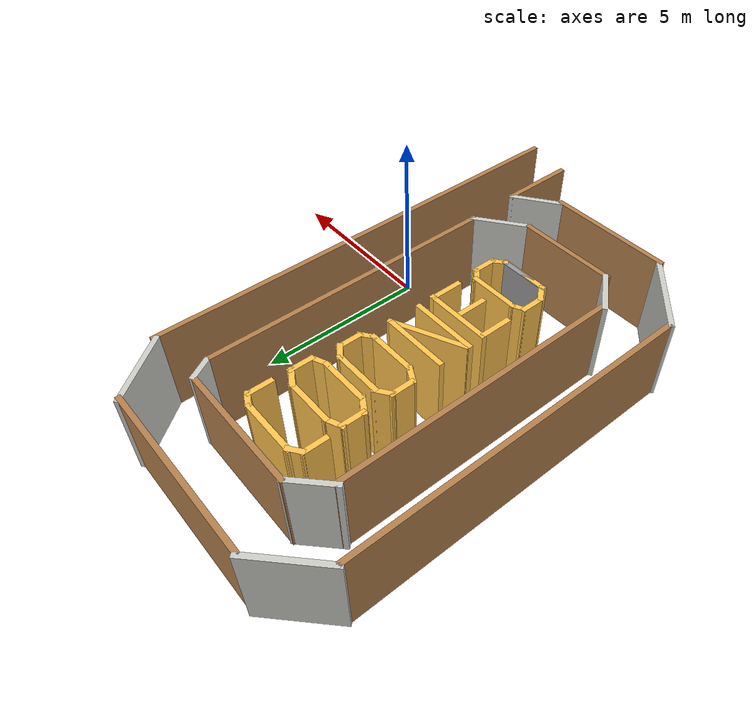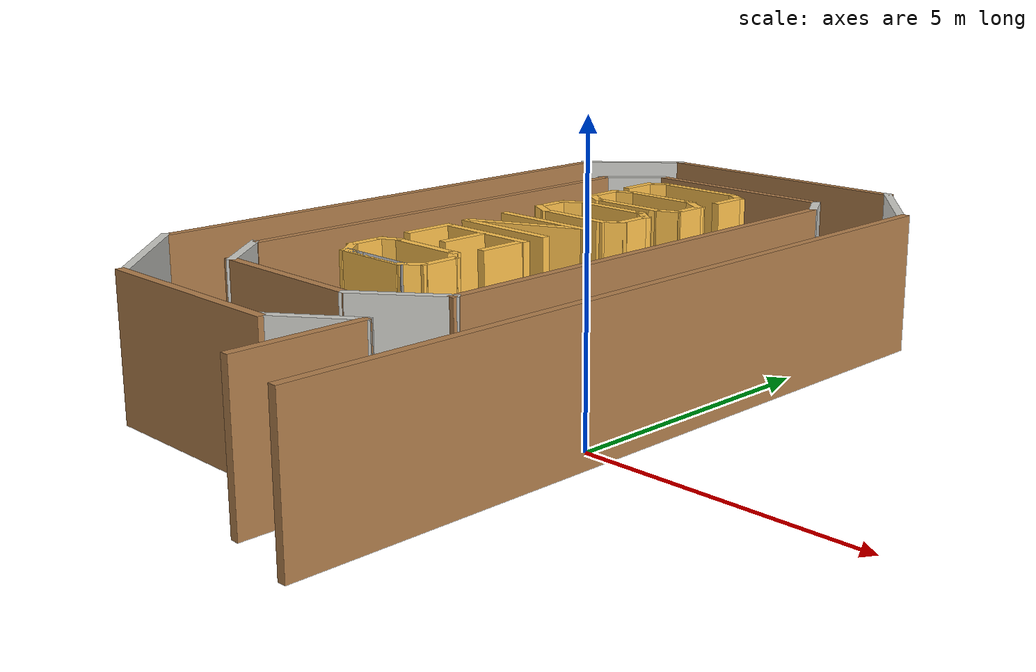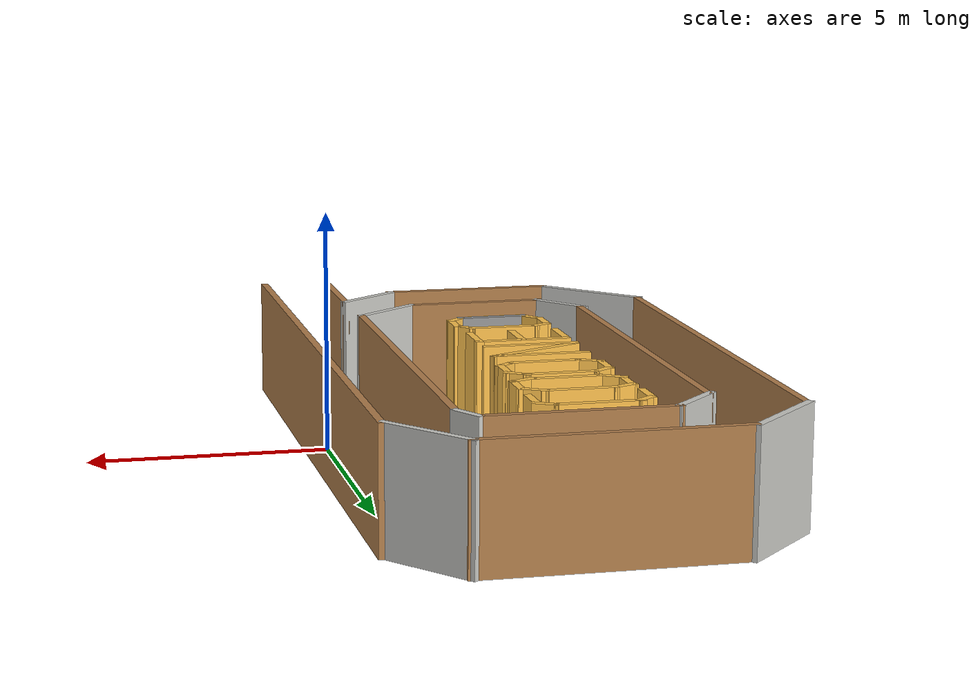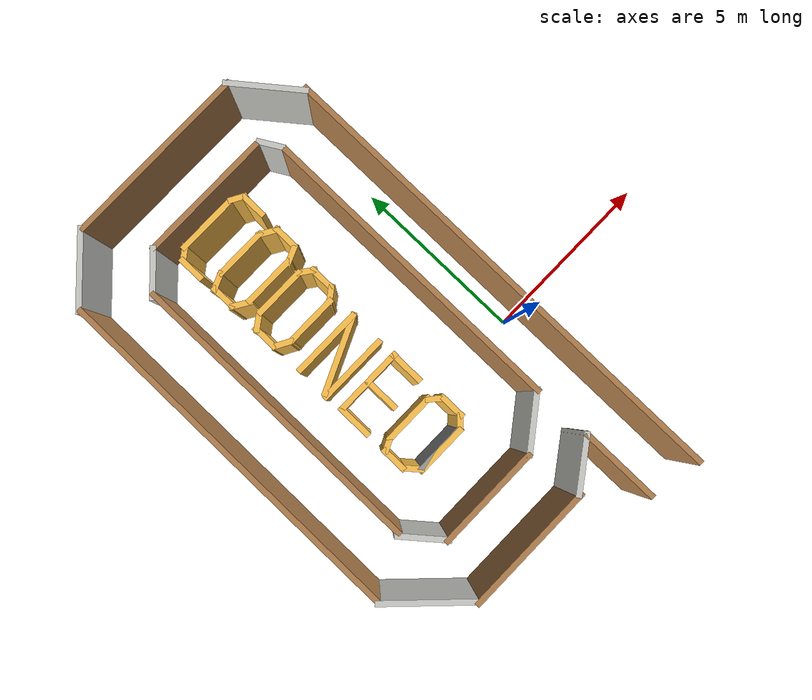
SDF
<?xml version='1.0'?>
<sdf version='1.6'>
  <model name='cooneo_race_road'>
    <pose frame=''>-3.53887 1.83486 0 0 -0 0</pose>
    <link name='Wall_11'>
      <collision name='Wall_11_Collision'>
        <geometry>
          <box>
            <size>1.37699 0.15 2.5</size>
          </box>
        </geometry>
        <pose frame=''>0 0 1.25 0 -0 0</pose>
      </collision>
      <visual name='Wall_11_Visual'>
        <pose frame=''>0 0 1.25 0 -0 0</pose>
        <geometry>
          <box>
            <size>1.37699 0.15 2.5</size>
          </box>
        </geometry>
        <material>
          <script>
            <uri>file://media/materials/scripts/gazebo.material</uri>
            <name>Gazebo/CeilingTiled</name>
          </script>
          <ambient>1 1 1 1</ambient>
        </material>
        <meta>
          <layer>0</layer>
        </meta>
      </visual>
      <pose frame=''>-1.99371 5.36024 0 0 -0 0.767422</pose>
    </link>
    <link name='Wall_112'>
      <collision name='Wall_112_Collision'>
        <geometry>
          <box>
            <size>0.75 0.15 2.5</size>
          </box>
        </geometry>
        <pose frame=''>0 0 1.25 0 -0 0</pose>
      </collision>
      <visual name='Wall_112_Visual'>
        <pose frame=''>0 0 1.25 0 -0 0</pose>
        <geometry>
          <box>
            <size>0.75 0.15 2.5</size>
          </box>
        </geometry>
        <material>
          <script>
            <uri>file://media/materials/scripts/gazebo.material</uri>
            <name>Gazebo/Grey</name>
          </script>
          <ambient>1 0.764706 0.305882 1</ambient>
        </material>
        <meta>
          <layer>0</layer>
        </meta>
      </visual>
      <pose frame=''>0.922545 4.75692 0 0 -0 1.5708</pose>
    </link>
    <link name='Wall_113'>
      <collision name='Wall_113_Collision'>
        <geometry>
          <box>
            <size>0.503409 0.15 2.5</size>
          </box>
        </geometry>
        <pose frame=''>0 0 1.25 0 -0 0</pose>
      </collision>
      <visual name='Wall_113_Visual'>
        <pose frame=''>0 0 1.25 0 -0 0</pose>
        <geometry>
          <box>
            <size>0.503409 0.15 2.5</size>
          </box>
        </geometry>
        <material>
          <script>
            <uri>file://media/materials/scripts/gazebo.material</uri>
            <name>Gazebo/Grey</name>
          </script>
          <ambient>1 0.764706 0.305882 1</ambient>
        </material>
        <meta>
          <layer>0</layer>
        </meta>
      </visual>
      <pose frame=''>0.78816 5.16279 0 0 -0 2.63485</pose>
    </link>
    <link name='Wall_114'>
      <collision name='Wall_114_Collision'>
        <geometry>
          <box>
            <size>1.75 0.15 2.5</size>
          </box>
        </geometry>
        <pose frame=''>0 0 1.25 0 -0 0</pose>
      </collision>
      <visual name='Wall_114_Visual'>
        <pose frame=''>0 0 1.25 0 -0 0</pose>
        <geometry>
          <box>
            <size>1.75 0.15 2.5</size>
          </box>
        </geometry>
        <material>
          <script>
            <uri>file://media/materials/scripts/gazebo.material</uri>
            <name>Gazebo/Grey</name>
          </script>
          <ambient>1 0.764706 0.305882 1</ambient>
        </material>
        <meta>
          <layer>0</layer>
        </meta>
      </visual>
      <pose frame=''>-0.206793 5.24855 0 0 -0 3.14159</pose>
    </link>
    <link name='Wall_115'>
      <collision name='Wall_115_Collision'>
        <geometry>
          <box>
            <size>0.491049 0.15 2.5</size>
          </box>
        </geometry>
        <pose frame=''>0 0 1.25 0 -0 0</pose>
      </collision>
      <visual name='Wall_115_Visual'>
        <pose frame=''>0 0 1.25 0 -0 0</pose>
        <geometry>
          <box>
            <size>0.491049 0.15 2.5</size>
          </box>
        </geometry>
        <material>
          <script>
            <uri>file://media/materials/scripts/gazebo.material</uri>
            <name>Gazebo/Grey</name>
          </script>
          <ambient>1 0.764706 0.305882 1</ambient>
        </material>
        <meta>
          <layer>0</layer>
        </meta>
      </visual>
      <pose frame=''>-1.1044 5.14846 0 0 0 -2.5143</pose>
    </link>
    <link name='Wall_118'>
      <collision name='Wall_118_Collision'>
        <geometry>
          <box>
            <size>0.75 0.15 2.5</size>
          </box>
        </geometry>
        <pose frame=''>0 0 1.25 0 -0 0</pose>
      </collision>
      <visual name='Wall_118_Visual'>
        <pose frame=''>0 0 1.25 0 -0 0</pose>
        <geometry>
          <box>
            <size>0.75 0.15 2.5</size>
          </box>
        </geometry>
        <material>
          <script>
            <uri>file://media/materials/scripts/gazebo.material</uri>
            <name>Gazebo/Grey</name>
          </script>
          <ambient>1 0.764706 0.305882 1</ambient>
        </material>
        <meta>
          <layer>0</layer>
        </meta>
      </visual>
      <pose frame=''>0.907998 3.62204 0 0 -0 1.5708</pose>
    </link>
    <link name='Wall_119'>
      <collision name='Wall_119_Collision'>
        <geometry>
          <box>
            <size>0.620203 0.15 2.5</size>
          </box>
        </geometry>
        <pose frame=''>0 0 1.25 0 -0 0</pose>
      </collision>
      <visual name='Wall_119_Visual'>
        <pose frame=''>0 0 1.25 0 -0 0</pose>
        <geometry>
          <box>
            <size>0.620203 0.15 2.5</size>
          </box>
        </geometry>
        <material>
          <script>
            <uri>file://media/materials/scripts/gazebo.material</uri>
            <name>Gazebo/Grey</name>
          </script>
          <ambient>1 0.764706 0.305882 1</ambient>
        </material>
        <meta>
          <layer>0</layer>
        </meta>
      </visual>
      <pose frame=''>0.7059 4.02205 0 0 -0 2.60532</pose>
    </link>
    <link name='Wall_12'>
      <collision name='Wall_12_Collision'>
        <geometry>
          <box>
            <size>3.75 0.15 2.5</size>
          </box>
        </geometry>
        <pose frame=''>0 0 1.25 0 -0 0</pose>
      </collision>
      <visual name='Wall_12_Visual'>
        <pose frame=''>0 0 1.25 0 -0 0</pose>
        <geometry>
          <box>
            <size>3.75 0.15 2.5</size>
          </box>
        </geometry>
        <material>
          <script>
            <uri>file://media/materials/scripts/gazebo.material</uri>
            <name>Gazebo/Wood</name>
          </script>
          <ambient>1 1 1 1</ambient>
        </material>
        <meta>
          <layer>0</layer>
        </meta>
      </visual>
      <pose frame=''>0.247827 5.78618 0 0 -0 0</pose>
    </link>
    <link name='Wall_120'>
      <collision name='Wall_120_Collision'>
        <geometry>
          <box>
            <size>1.5 0.15 2.5</size>
          </box>
        </geometry>
        <pose frame=''>0 0 1.25 0 -0 0</pose>
      </collision>
      <visual name='Wall_120_Visual'>
        <pose frame=''>0 0 1.25 0 -0 0</pose>
        <geometry>
          <box>
            <size>1.5 0.15 2.5</size>
          </box>
        </geometry>
        <material>
          <script>
            <uri>file://media/materials/scripts/gazebo.material</uri>
            <name>Gazebo/Grey</name>
          </script>
          <ambient>1 0.764706 0.305882 1</ambient>
        </material>
        <meta>
          <layer>0</layer>
        </meta>
      </visual>
      <pose frame=''>-0.151084 4.14217 0 0 -0 3.14159</pose>
    </link>
    <link name='Wall_121'>
      <collision name='Wall_121_Collision'>
        <geometry>
          <box>
            <size>0.575747 0.15 2.5</size>
          </box>
        </geometry>
        <pose frame=''>0 0 1.25 0 -0 0</pose>
      </collision>
      <visual name='Wall_121_Visual'>
        <pose frame=''>0 0 1.25 0 -0 0</pose>
        <geometry>
          <box>
            <size>0.575747 0.15 2.5</size>
          </box>
        </geometry>
        <material>
          <script>
            <uri>file://media/materials/scripts/gazebo.material</uri>
            <name>Gazebo/Grey</name>
          </script>
          <ambient>1 0.764706 0.305882 1</ambient>
        </material>
        <meta>
          <layer>0</layer>
        </meta>
      </visual>
      <pose frame=''>-1.04233 4.05942 0 0 0 -2.74235</pose>
    </link>
    <link name='Wall_122'>
      <collision name='Wall_122_Collision'>
        <geometry>
          <box>
            <size>0.75 0.15 2.5</size>
          </box>
        </geometry>
        <pose frame=''>0 0 1.25 0 -0 0</pose>
      </collision>
      <visual name='Wall_122_Visual'>
        <pose frame=''>0 0 1.25 0 -0 0</pose>
        <geometry>
          <box>
            <size>0.75 0.15 2.5</size>
          </box>
        </geometry>
        <material>
          <script>
            <uri>file://media/materials/scripts/gazebo.material</uri>
            <name>Gazebo/Grey</name>
          </script>
          <ambient>1 0.764706 0.305882 1</ambient>
        </material>
        <meta>
          <layer>0</layer>
        </meta>
      </visual>
      <pose frame=''>-1.21835 3.67668 0 0 0 -1.5708</pose>
    </link>
    <link name='Wall_124'>
      <collision name='Wall_124_Collision'>
        <geometry>
          <box>
            <size>0.609099 0.15 2.5</size>
          </box>
        </geometry>
        <pose frame=''>0 0 1.25 0 -0 0</pose>
      </collision>
      <visual name='Wall_124_Visual'>
        <pose frame=''>0 0 1.25 0 -0 0</pose>
        <geometry>
          <box>
            <size>0.609099 0.15 2.5</size>
          </box>
        </geometry>
        <material>
          <script>
            <uri>file://media/materials/scripts/gazebo.material</uri>
            <name>Gazebo/Grey</name>
          </script>
          <ambient>1 0.764706 0.305882 1</ambient>
        </material>
        <meta>
          <layer>0</layer>
        </meta>
      </visual>
      <pose frame=''>-1.04363 3.25529 0 0 0 -0.557177</pose>
    </link>
    <link name='Wall_125'>
      <collision name='Wall_125_Collision'>
        <geometry>
          <box>
            <size>1.5 0.15 2.5</size>
          </box>
        </geometry>
        <pose frame=''>0 0 1.25 0 -0 0</pose>
      </collision>
      <visual name='Wall_125_Visual'>
        <pose frame=''>0 0 1.25 0 -0 0</pose>
        <geometry>
          <box>
            <size>1.5 0.15 2.5</size>
          </box>
        </geometry>
        <material>
          <script>
            <uri>file://media/materials/scripts/gazebo.material</uri>
            <name>Gazebo/Grey</name>
          </script>
          <ambient>1 0.764706 0.305882 1</ambient>
        </material>
        <meta>
          <layer>0</layer>
        </meta>
      </visual>
      <pose frame=''>-0.153687 3.15402 0 0 -0 0</pose>
    </link>
    <link name='Wall_127'>
      <collision name='Wall_127_Collision'>
        <geometry>
          <box>
            <size>0.589194 0.15 2.5</size>
          </box>
        </geometry>
        <pose frame=''>0 0 1.25 0 -0 0</pose>
      </collision>
      <visual name='Wall_127_Visual'>
        <pose frame=''>0 0 1.25 0 -0 0</pose>
        <geometry>
          <box>
            <size>0.589194 0.15 2.5</size>
          </box>
        </geometry>
        <material>
          <script>
            <uri>file://media/materials/scripts/gazebo.material</uri>
            <name>Gazebo/Grey</name>
          </script>
          <ambient>1 0.764706 0.305882 1</ambient>
        </material>
        <meta>
          <layer>0</layer>
        </meta>
      </visual>
      <pose frame=''>0.704598 3.21792 0 0 -0 0.391686</pose>
    </link>
    <link name='Wall_129'>
      <collision name='Wall_129_Collision'>
        <geometry>
          <box>
            <size>1.5 0.15 2.5</size>
          </box>
        </geometry>
        <pose frame=''>0 0 1.25 0 -0 0</pose>
      </collision>
      <visual name='Wall_129_Visual'>
        <pose frame=''>0 0 1.25 0 -0 0</pose>
        <geometry>
          <box>
            <size>1.5 0.15 2.5</size>
          </box>
        </geometry>
        <material>
          <script>
            <uri>file://media/materials/scripts/gazebo.material</uri>
            <name>Gazebo/Grey</name>
          </script>
          <ambient>1 0.764706 0.305882 1</ambient>
        </material>
        <meta>
          <layer>0</layer>
        </meta>
      </visual>
      <pose frame=''>-0.170289 2.76847 0 0 -0 0</pose>
    </link>
    <link name='Wall_130'>
      <collision name='Wall_130_Collision'>
        <geometry>
          <box>
            <size>0.55895 0.15 2.5</size>
          </box>
        </geometry>
        <pose frame=''>0 0 1.25 0 -0 0</pose>
      </collision>
      <visual name='Wall_130_Visual'>
        <pose frame=''>0 0 1.25 0 -0 0</pose>
        <geometry>
          <box>
            <size>0.55895 0.15 2.5</size>
          </box>
        </geometry>
        <material>
          <script>
            <uri>file://media/materials/scripts/gazebo.material</uri>
            <name>Gazebo/Grey</name>
          </script>
          <ambient>1 0.764706 0.305882 1</ambient>
        </material>
        <meta>
          <layer>0</layer>
        </meta>
      </visual>
      <pose frame=''>0.650854 2.66955 0 0 0 -0.621358</pose>
    </link>
    <link name='Wall_131'>
      <collision name='Wall_131_Collision'>
        <geometry>
          <box>
            <size>0.75 0.15 2.5</size>
          </box>
        </geometry>
        <pose frame=''>0 0 1.25 0 -0 0</pose>
      </collision>
      <visual name='Wall_131_Visual'>
        <pose frame=''>0 0 1.25 0 -0 0</pose>
        <geometry>
          <box>
            <size>0.75 0.15 2.5</size>
          </box>
        </geometry>
        <material>
          <script>
            <uri>file://media/materials/scripts/gazebo.material</uri>
            <name>Gazebo/Grey</name>
          </script>
          <ambient>1 0.764706 0.305882 1</ambient>
        </material>
        <meta>
          <layer>0</layer>
        </meta>
      </visual>
      <pose frame=''>0.796997 2.27063 0 0 0 -1.5708</pose>
    </link>
    <link name='Wall_132'>
      <collision name='Wall_132_Collision'>
        <geometry>
          <box>
            <size>0.528215 0.15 2.5</size>
          </box>
        </geometry>
        <pose frame=''>0 0 1.25 0 -0 0</pose>
      </collision>
      <visual name='Wall_132_Visual'>
        <pose frame=''>0 0 1.25 0 -0 0</pose>
        <geometry>
          <box>
            <size>0.528215 0.15 2.5</size>
          </box>
        </geometry>
        <material>
          <script>
            <uri>file://media/materials/scripts/gazebo.material</uri>
            <name>Gazebo/Grey</name>
          </script>
          <ambient>1 0.764706 0.305882 1</ambient>
        </material>
        <meta>
          <layer>0</layer>
        </meta>
      </visual>
      <pose frame=''>0.663172 1.84068 0 0 0 -2.52185</pose>
    </link>
    <link name='Wall_133'>
      <collision name='Wall_133_Collision'>
        <geometry>
          <box>
            <size>1.5 0.15 2.5</size>
          </box>
        </geometry>
        <pose frame=''>0 0 1.25 0 -0 0</pose>
      </collision>
      <visual name='Wall_133_Visual'>
        <pose frame=''>0 0 1.25 0 -0 0</pose>
        <geometry>
          <box>
            <size>1.5 0.15 2.5</size>
          </box>
        </geometry>
        <material>
          <script>
            <uri>file://media/materials/scripts/gazebo.material</uri>
            <name>Gazebo/Grey</name>
          </script>
          <ambient>1 0.764706 0.305882 1</ambient>
        </material>
        <meta>
          <layer>0</layer>
        </meta>
      </visual>
      <pose frame=''>-0.145653 1.73084 0 0 -0 3.14159</pose>
    </link>
    <link name='Wall_134'>
      <collision name='Wall_134_Collision'>
        <geometry>
          <box>
            <size>0.57881 0.15 2.5</size>
          </box>
        </geometry>
        <pose frame=''>0 0 1.25 0 -0 0</pose>
      </collision>
      <visual name='Wall_134_Visual'>
        <pose frame=''>0 0 1.25 0 -0 0</pose>
        <geometry>
          <box>
            <size>0.57881 0.15 2.5</size>
          </box>
        </geometry>
        <material>
          <script>
            <uri>file://media/materials/scripts/gazebo.material</uri>
            <name>Gazebo/Grey</name>
          </script>
          <ambient>1 0.764706 0.305882 1</ambient>
        </material>
        <meta>
          <layer>0</layer>
        </meta>
      </visual>
      <pose frame=''>-1.0287 1.83405 0 0 -0 2.63937</pose>
    </link>
    <link name='Wall_135'>
      <collision name='Wall_135_Collision'>
        <geometry>
          <box>
            <size>0.75 0.15 2.5</size>
          </box>
        </geometry>
        <pose frame=''>0 0 1.25 0 -0 0</pose>
      </collision>
      <visual name='Wall_135_Visual'>
        <pose frame=''>0 0 1.25 0 -0 0</pose>
        <geometry>
          <box>
            <size>0.75 0.15 2.5</size>
          </box>
        </geometry>
        <material>
          <script>
            <uri>file://media/materials/scripts/gazebo.material</uri>
            <name>Gazebo/Grey</name>
          </script>
          <ambient>1 0.764706 0.305882 1</ambient>
        </material>
        <meta>
          <layer>0</layer>
        </meta>
      </visual>
      <pose frame=''>-1.21663 2.25738 0 0 -0 1.5708</pose>
    </link>
    <link name='Wall_136'>
      <collision name='Wall_136_Collision'>
        <geometry>
          <box>
            <size>0.581882 0.15 2.5</size>
          </box>
        </geometry>
        <pose frame=''>0 0 1.25 0 -0 0</pose>
      </collision>
      <visual name='Wall_136_Visual'>
        <pose frame=''>0 0 1.25 0 -0 0</pose>
        <geometry>
          <box>
            <size>0.581882 0.15 2.5</size>
          </box>
        </geometry>
        <material>
          <script>
            <uri>file://media/materials/scripts/gazebo.material</uri>
            <name>Gazebo/Grey</name>
          </script>
          <ambient>1 0.764706 0.305882 1</ambient>
        </material>
        <meta>
          <layer>0</layer>
        </meta>
      </visual>
      <pose frame=''>-1.04101 2.66292 0 0 -0 0.621102</pose>
    </link>
    <link name='Wall_141'>
      <collision name='Wall_141_Collision'>
        <geometry>
          <box>
            <size>2 0.15 2.5</size>
          </box>
        </geometry>
        <pose frame=''>0 0 1.25 0 -0 0</pose>
      </collision>
      <visual name='Wall_141_Visual'>
        <pose frame=''>0 0 1.25 0 -0 0</pose>
        <geometry>
          <box>
            <size>2 0.15 2.5</size>
          </box>
        </geometry>
        <material>
          <script>
            <uri>file://media/materials/scripts/gazebo.material</uri>
            <name>Gazebo/Grey</name>
          </script>
          <ambient>1 0.764706 0.305882 1</ambient>
        </material>
        <meta>
          <layer>0</layer>
        </meta>
      </visual>
      <pose frame=''>-0.257587 1.0788 0 0 -0 0</pose>
    </link>
    <link name='Wall_142'>
      <collision name='Wall_142_Collision'>
        <geometry>
          <box>
            <size>2.19402 0.15 2.5</size>
          </box>
        </geometry>
        <pose frame=''>0 0 1.25 0 -0 0</pose>
      </collision>
      <visual name='Wall_142_Visual'>
        <pose frame=''>0 0 1.25 0 -0 0</pose>
        <geometry>
          <box>
            <size>2.19402 0.15 2.5</size>
          </box>
        </geometry>
        <material>
          <script>
            <uri>file://media/materials/scripts/gazebo.material</uri>
            <name>Gazebo/Grey</name>
          </script>
          <ambient>1 0.764706 0.305882 1</ambient>
        </material>
        <meta>
          <layer>0</layer>
        </meta>
      </visual>
      <pose frame=''>-0.244438 0.65934 0 0 0 -2.71867</pose>
    </link>
    <link name='Wall_143'>
      <collision name='Wall_143_Collision'>
        <geometry>
          <box>
            <size>2 0.15 2.5</size>
          </box>
        </geometry>
        <pose frame=''>0 0 1.25 0 -0 0</pose>
      </collision>
      <visual name='Wall_143_Visual'>
        <pose frame=''>0 0 1.25 0 -0 0</pose>
        <geometry>
          <box>
            <size>2 0.15 2.5</size>
          </box>
        </geometry>
        <material>
          <script>
            <uri>file://media/materials/scripts/gazebo.material</uri>
            <name>Gazebo/Grey</name>
          </script>
          <ambient>1 0.764706 0.305882 1</ambient>
        </material>
        <meta>
          <layer>0</layer>
        </meta>
      </visual>
      <pose frame=''>-0.286581 0.169519 0 0 -0 0</pose>
    </link>
    <link name='Wall_146'>
      <collision name='Wall_146_Collision'>
        <geometry>
          <box>
            <size>2 0.15 2.5</size>
          </box>
        </geometry>
        <pose frame=''>0 0 1.25 0 -0 0</pose>
      </collision>
      <visual name='Wall_146_Visual'>
        <pose frame=''>0 0 1.25 0 -0 0</pose>
        <geometry>
          <box>
            <size>2 0.15 2.5</size>
          </box>
        </geometry>
        <material>
          <script>
            <uri>file://media/materials/scripts/gazebo.material</uri>
            <name>Gazebo/Grey</name>
          </script>
          <ambient>1 0.764706 0.305882 1</ambient>
        </material>
        <meta>
          <layer>0</layer>
        </meta>
      </visual>
      <pose frame=''>-0.246213 -0.322557 0 0 -0 0</pose>
    </link>
    <link name='Wall_150'>
      <collision name='Wall_150_Collision'>
        <geometry>
          <box>
            <size>1 0.15 2.5</size>
          </box>
        </geometry>
        <pose frame=''>0 0 1.25 0 -0 0</pose>
      </collision>
      <visual name='Wall_150_Visual'>
        <pose frame=''>0 0 1.25 0 -0 0</pose>
        <geometry>
          <box>
            <size>1 0.15 2.5</size>
          </box>
        </geometry>
        <material>
          <script>
            <uri>file://media/materials/scripts/gazebo.material</uri>
            <name>Gazebo/Grey</name>
          </script>
          <ambient>1 0.764706 0.305882 1</ambient>
        </material>
        <meta>
          <layer>0</layer>
        </meta>
      </visual>
      <pose frame=''>-1.17121 -0.747557 0 0 0 -1.5708</pose>
    </link>
    <link name='Wall_152'>
      <collision name='Wall_152_Collision'>
        <geometry>
          <box>
            <size>1 0.15 2.5</size>
          </box>
        </geometry>
        <pose frame=''>0 0 1.25 0 -0 0</pose>
      </collision>
      <visual name='Wall_152_Visual'>
        <pose frame=''>0 0 1.25 0 -0 0</pose>
        <geometry>
          <box>
            <size>1 0.15 2.5</size>
          </box>
        </geometry>
        <material>
          <script>
            <uri>file://media/materials/scripts/gazebo.material</uri>
            <name>Gazebo/Grey</name>
          </script>
          <ambient>1 0.764706 0.305882 1</ambient>
        </material>
        <meta>
          <layer>0</layer>
        </meta>
      </visual>
      <pose frame=''>-0.241233 -0.772421 0 0 0 -1.5708</pose>
    </link>
    <link name='Wall_154'>
      <collision name='Wall_154_Collision'>
        <geometry>
          <box>
            <size>1 0.15 2.5</size>
          </box>
        </geometry>
        <pose frame=''>0 0 1.25 0 -0 0</pose>
      </collision>
      <visual name='Wall_154_Visual'>
        <pose frame=''>0 0 1.25 0 -0 0</pose>
        <geometry>
          <box>
            <size>1 0.15 2.5</size>
          </box>
        </geometry>
        <material>
          <script>
            <uri>file://media/materials/scripts/gazebo.material</uri>
            <name>Gazebo/Grey</name>
          </script>
          <ambient>1 0.764706 0.305882 1</ambient>
        </material>
        <meta>
          <layer>0</layer>
        </meta>
      </visual>
      <pose frame=''>0.660057 -0.747339 0 0 0 -1.5708</pose>
    </link>
    <link name='Wall_156'>
      <collision name='Wall_156_Collision'>
        <geometry>
          <box>
            <size>1.5 0.15 2.5</size>
          </box>
        </geometry>
        <pose frame=''>0 0 1.25 0 -0 0</pose>
      </collision>
      <visual name='Wall_156_Visual'>
        <pose frame=''>0 0 1.25 0 -0 0</pose>
        <geometry>
          <box>
            <size>1.5 0.15 2.5</size>
          </box>
        </geometry>
        <material>
          <script>
            <uri>file://media/materials/scripts/gazebo.material</uri>
            <name>Gazebo/Grey</name>
          </script>
          <ambient>1 0.764706 0.305882 1</ambient>
        </material>
        <meta>
          <layer>0</layer>
        </meta>
      </visual>
      <pose frame=''>-0.189544 -1.66532 0 0 -0 0</pose>
    </link>
    <link name='Wall_158'>
      <collision name='Wall_158_Collision'>
        <geometry>
          <box>
            <size>1.5 0.15 2.5</size>
          </box>
        </geometry>
        <pose frame=''>0 0 1.25 0 -0 0</pose>
      </collision>
      <visual name='Wall_158_Visual'>
        <pose frame=''>0 0 1.25 0 -0 0</pose>
        <geometry>
          <box>
            <size>1.5 0.15 2.5</size>
          </box>
        </geometry>
        <material>
          <script>
            <uri>file://media/materials/scripts/gazebo.material</uri>
            <name>Gazebo/Grey</name>
          </script>
          <ambient>1 1 1 1</ambient>
        </material>
        <meta>
          <layer>0</layer>
        </meta>
      </visual>
      <pose frame=''>-0.195645 -2.73094 0 0 -0 0</pose>
    </link>
    <link name='Wall_160'>
      <collision name='Wall_160_Collision'>
        <geometry>
          <box>
            <size>0.75 0.15 2.5</size>
          </box>
        </geometry>
        <pose frame=''>0 0 1.25 0 -0 0</pose>
      </collision>
      <visual name='Wall_160_Visual'>
        <pose frame=''>0 0 1.25 0 -0 0</pose>
        <geometry>
          <box>
            <size>0.75 0.15 2.5</size>
          </box>
        </geometry>
        <material>
          <script>
            <uri>file://media/materials/scripts/gazebo.material</uri>
            <name>Gazebo/Grey</name>
          </script>
          <ambient>1 0.764706 0.305882 1</ambient>
        </material>
        <meta>
          <layer>0</layer>
        </meta>
      </visual>
      <pose frame=''>-1.16822 -2.09289 0 0 0 -1.5708</pose>
    </link>
    <link name='Wall_162'>
      <collision name='Wall_162_Collision'>
        <geometry>
          <box>
            <size>0.75 0.15 2.5</size>
          </box>
        </geometry>
        <pose frame=''>0 0 1.25 0 -0 0</pose>
      </collision>
      <visual name='Wall_162_Visual'>
        <pose frame=''>0 0 1.25 0 -0 0</pose>
        <geometry>
          <box>
            <size>0.75 0.15 2.5</size>
          </box>
        </geometry>
        <material>
          <script>
            <uri>file://media/materials/scripts/gazebo.material</uri>
            <name>Gazebo/Grey</name>
          </script>
          <ambient>1 0.764706 0.305882 1</ambient>
        </material>
        <meta>
          <layer>0</layer>
        </meta>
      </visual>
      <pose frame=''>0.748078 -2.20866 0 0 0 -1.5708</pose>
    </link>
    <link name='Wall_164'>
      <collision name='Wall_164_Collision'>
        <geometry>
          <box>
            <size>0.442712 0.15 2.5</size>
          </box>
        </geometry>
        <pose frame=''>0 0 1.25 0 -0 0</pose>
      </collision>
      <visual name='Wall_164_Visual'>
        <pose frame=''>0 0 1.25 0 -0 0</pose>
        <geometry>
          <box>
            <size>0.442712 0.15 2.5</size>
          </box>
        </geometry>
        <material>
          <script>
            <uri>file://media/materials/scripts/gazebo.material</uri>
            <name>Gazebo/Grey</name>
          </script>
          <ambient>1 0.764706 0.305882 1</ambient>
        </material>
        <meta>
          <layer>0</layer>
        </meta>
      </visual>
      <pose frame=''>-1.01638 -1.72911 0 0 -0 0.450925</pose>
    </link>
    <link name='Wall_167'>
      <collision name='Wall_167_Collision'>
        <geometry>
          <box>
            <size>0.508029 0.15 2.5</size>
          </box>
        </geometry>
        <pose frame=''>0 0 1.25 0 -0 0</pose>
      </collision>
      <visual name='Wall_167_Visual'>
        <pose frame=''>0 0 1.25 0 -0 0</pose>
        <geometry>
          <box>
            <size>0.508029 0.15 2.5</size>
          </box>
        </geometry>
        <material>
          <script>
            <uri>file://media/materials/scripts/gazebo.material</uri>
            <name>Gazebo/Grey</name>
          </script>
          <ambient>1 0.764706 0.305882 1</ambient>
        </material>
        <meta>
          <layer>0</layer>
        </meta>
      </visual>
      <pose frame=''>0.596654 -1.78699 0 0 -0 2.39428</pose>
    </link>
    <link name='Wall_17'>
      <collision name='Wall_17_Collision'>
        <geometry>
          <box>
            <size>0.75 0.15 2.5</size>
          </box>
        </geometry>
        <pose frame=''>0 0 1.25 0 -0 0</pose>
      </collision>
      <visual name='Wall_17_Visual'>
        <pose frame=''>0 0 1.25 0 -0 0</pose>
        <geometry>
          <box>
            <size>0.75 0.15 2.5</size>
          </box>
        </geometry>
        <material>
          <script>
            <uri>file://media/materials/scripts/gazebo.material</uri>
            <name>Gazebo/CeilingTiled</name>
          </script>
          <ambient>1 1 1 1</ambient>
        </material>
        <meta>
          <layer>0</layer>
        </meta>
      </visual>
      <pose frame=''>2.32541 5.52354 0 0 0 -1.0472</pose>
    </link>
    <link name='Wall_170'>
      <collision name='Wall_170_Collision'>
        <geometry>
          <box>
            <size>0.587339 0.15 2.5</size>
          </box>
        </geometry>
        <pose frame=''>0 0 1.25 0 -0 0</pose>
      </collision>
      <visual name='Wall_170_Visual'>
        <pose frame=''>0 0 1.25 0 -0 0</pose>
        <geometry>
          <box>
            <size>0.587339 0.15 2.5</size>
          </box>
        </geometry>
        <material>
          <script>
            <uri>file://media/materials/scripts/gazebo.material</uri>
            <name>Gazebo/Grey</name>
          </script>
          <ambient>1 0.764706 0.305882 1</ambient>
        </material>
        <meta>
          <layer>0</layer>
        </meta>
      </visual>
      <pose frame=''>-1.00938 -2.56191 0 0 0 -0.883509</pose>
    </link>
    <link name='Wall_171'>
      <collision name='Wall_171_Collision'>
        <geometry>
          <box>
            <size>1.5 0.15 2.5</size>
          </box>
        </geometry>
        <pose frame=''>0 0 1.25 0 -0 0</pose>
      </collision>
      <visual name='Wall_171_Visual'>
        <pose frame=''>0 0 1.25 0 -0 0</pose>
        <geometry>
          <box>
            <size>1.5 0.15 2.5</size>
          </box>
        </geometry>
        <material>
          <script>
            <uri>file://media/materials/scripts/gazebo.material</uri>
            <name>Gazebo/Grey</name>
          </script>
          <ambient>1 0.764706 0.305882 1</ambient>
        </material>
        <meta>
          <layer>0</layer>
        </meta>
      </visual>
      <pose frame=''>-0.215758 -2.75105 0 0 -0 0</pose>
    </link>
    <link name='Wall_174'>
      <collision name='Wall_174_Collision'>
        <geometry>
          <box>
            <size>0.483484 0.15 2.5</size>
          </box>
        </geometry>
        <pose frame=''>0 0 1.25 0 -0 0</pose>
      </collision>
      <visual name='Wall_174_Visual'>
        <pose frame=''>0 0 1.25 0 -0 0</pose>
        <geometry>
          <box>
            <size>0.483484 0.15 2.5</size>
          </box>
        </geometry>
        <material>
          <script>
            <uri>file://media/materials/scripts/gazebo.material</uri>
            <name>Gazebo/Grey</name>
          </script>
          <ambient>1 0.764706 0.305882 1</ambient>
        </material>
        <meta>
          <layer>0</layer>
        </meta>
      </visual>
      <pose frame=''>0.60366 -2.6198 0 0 -0 0.729528</pose>
    </link>
    <link name='Wall_176'>
      <collision name='Wall_176_Collision'>
        <geometry>
          <box>
            <size>0.75 0.15 2.5</size>
          </box>
        </geometry>
        <pose frame=''>0 0 1.25 0 -0 0</pose>
      </collision>
      <visual name='Wall_176_Visual'>
        <pose frame=''>0 0 1.25 0 -0 0</pose>
        <geometry>
          <box>
            <size>0.75 0.15 2.5</size>
          </box>
        </geometry>
        <material>
          <script>
            <uri>file://media/materials/scripts/gazebo.material</uri>
            <name>Gazebo/Grey</name>
          </script>
          <ambient>1 0.764706 0.305882 1</ambient>
        </material>
        <meta>
          <layer>0</layer>
        </meta>
      </visual>
      <pose frame=''>-1.26774 4.74978 0 0 0 -1.5708</pose>
    </link>
    <link name='Wall_21'>
      <collision name='Wall_21_Collision'>
        <geometry>
          <box>
            <size>10.25 0.15 2.5</size>
          </box>
        </geometry>
        <pose frame=''>0 0 1.25 0 -0 0</pose>
      </collision>
      <visual name='Wall_21_Visual'>
        <pose frame=''>0 0 1.25 0 -0 0</pose>
        <geometry>
          <box>
            <size>10.25 0.15 2.5</size>
          </box>
        </geometry>
        <material>
          <script>
            <uri>file://media/materials/scripts/gazebo.material</uri>
            <name>Gazebo/Wood</name>
          </script>
          <ambient>1 1 1 1</ambient>
        </material>
        <meta>
          <layer>0</layer>
        </meta>
      </visual>
      <pose frame=''>-3.89537 0.920323 0 0 -0 1.5708</pose>
    </link>
    <link name='Wall_27'>
      <collision name='Wall_27_Collision'>
        <geometry>
          <box>
            <size>2.21279 0.15 2.5</size>
          </box>
        </geometry>
        <pose frame=''>0 0 1.25 0 -0 0</pose>
      </collision>
      <visual name='Wall_27_Visual'>
        <pose frame=''>0 0 1.25 0 -0 0</pose>
        <geometry>
          <box>
            <size>2.21279 0.15 2.5</size>
          </box>
        </geometry>
        <material>
          <script>
            <uri>file://media/materials/scripts/gazebo.material</uri>
            <name>Gazebo/CeilingTiled</name>
          </script>
          <ambient>1 1 1 1</ambient>
        </material>
        <meta>
          <layer>0</layer>
        </meta>
      </visual>
      <pose frame=''>-3.18606 6.71931 0 0 -0 0.764364</pose>
    </link>
    <link name='Wall_28'>
      <collision name='Wall_28_Collision'>
        <geometry>
          <box>
            <size>5.25 0.15 2.5</size>
          </box>
        </geometry>
        <pose frame=''>0 0 1.25 0 -0 0</pose>
      </collision>
      <visual name='Wall_28_Visual'>
        <pose frame=''>0 0 1.25 0 -0 0</pose>
        <geometry>
          <box>
            <size>5.25 0.15 2.5</size>
          </box>
        </geometry>
        <material>
          <script>
            <uri>file://media/materials/scripts/gazebo.material</uri>
            <name>Gazebo/Wood</name>
          </script>
          <ambient>1 1 1 1</ambient>
        </material>
        <meta>
          <layer>0</layer>
        </meta>
      </visual>
      <pose frame=''>0.148877 7.39266 0 0 -0 0</pose>
    </link>
    <link name='Wall_4'>
      <collision name='Wall_4_Collision'>
        <geometry>
          <box>
            <size>8.75 0.15 2.5</size>
          </box>
        </geometry>
        <pose frame=''>0 0 1.25 0 -0 0</pose>
      </collision>
      <visual name='Wall_4_Visual'>
        <pose frame=''>0 0 1.25 0 -0 0</pose>
        <geometry>
          <box>
            <size>8.75 0.15 2.5</size>
          </box>
        </geometry>
        <material>
          <script>
            <uri>file://media/materials/scripts/gazebo.material</uri>
            <name>Gazebo/Wood</name>
          </script>
          <ambient>1 1 1 1</ambient>
        </material>
        <meta>
          <layer>0</layer>
        </meta>
      </visual>
      <pose frame=''>2.48993 0.850672 0 0 -0 1.5708</pose>
    </link>
    <link name='Wall_7'>
      <collision name='Wall_7_Collision'>
        <geometry>
          <box>
            <size>3 0.15 2.5</size>
          </box>
        </geometry>
        <pose frame=''>0 0 1.25 0 -0 0</pose>
      </collision>
      <visual name='Wall_7_Visual'>
        <pose frame=''>0 0 1.25 0 -0 0</pose>
        <geometry>
          <box>
            <size>3 0.15 2.5</size>
          </box>
        </geometry>
        <material>
          <script>
            <uri>file://media/materials/scripts/gazebo.material</uri>
            <name>Gazebo/Wood</name>
          </script>
          <ambient>1 1 1 1</ambient>
        </material>
        <meta>
          <layer>0</layer>
        </meta>
      </visual>
      <pose frame=''>-0.249359 -4.37763 0 0 -0 3.14159</pose>
    </link>
    <link name='Wall_72'>
      <collision name='Wall_72_Collision'>
        <geometry>
          <box>
            <size>3.75 0.15 2.5</size>
          </box>
        </geometry>
        <pose frame=''>0 0 1.25 0 -0 0</pose>
      </collision>
      <visual name='Wall_72_Visual'>
        <pose frame=''>0 0 1.25 0 -0 0</pose>
        <geometry>
          <box>
            <size>3.75 0.15 2.5</size>
          </box>
        </geometry>
        <material>
          <script>
            <uri>file://media/materials/scripts/gazebo.material</uri>
            <name>Gazebo/Wood</name>
          </script>
          <ambient>1 1 1 1</ambient>
        </material>
        <meta>
          <layer>0</layer>
        </meta>
      </visual>
      <pose frame=''>-0.428176 -5.94025 0 0 -0 0</pose>
    </link>
    <link name='Wall_78'>
      <collision name='Wall_78_Collision'>
        <geometry>
          <box>
            <size>2.5 0.15 2.5</size>
          </box>
        </geometry>
        <pose frame=''>0 0 1.25 0 -0 0</pose>
      </collision>
      <visual name='Wall_78_Visual'>
        <pose frame=''>0 0 1.25 0 -0 0</pose>
        <geometry>
          <box>
            <size>2.5 0.15 2.5</size>
          </box>
        </geometry>
        <material>
          <script>
            <uri>file://media/materials/scripts/gazebo.material</uri>
            <name>Gazebo/CeilingTiled</name>
          </script>
          <ambient>1 1 1 1</ambient>
        </material>
        <meta>
          <layer>0</layer>
        </meta>
      </visual>
      <pose frame=''>-3.09341 -5.01889 0 0 0 -0.785398</pose>
    </link>
    <link name='Wall_84'>
      <collision name='Wall_84_Collision'>
        <geometry>
          <box>
            <size>2.25 0.15 2.5</size>
          </box>
        </geometry>
        <pose frame=''>0 0 1.25 0 -0 0</pose>
      </collision>
      <visual name='Wall_84_Visual'>
        <pose frame=''>0 0 1.25 0 -0 0</pose>
        <geometry>
          <box>
            <size>2.25 0.15 2.5</size>
          </box>
        </geometry>
        <material>
          <script>
            <uri>file://media/materials/scripts/gazebo.material</uri>
            <name>Gazebo/Wood</name>
          </script>
          <ambient>1 1 1 1</ambient>
        </material>
        <meta>
          <layer>0</layer>
        </meta>
      </visual>
      <pose frame=''>2.541 -6.13094 0 0 0 -1.5708</pose>
    </link>
    <link name='Wall_86'>
      <collision name='Wall_86_Collision'>
        <geometry>
          <box>
            <size>13.5 0.15 2.5</size>
          </box>
        </geometry>
        <pose frame=''>0 0 1.25 0 -0 0</pose>
      </collision>
      <visual name='Wall_86_Visual'>
        <pose frame=''>0 0 1.25 0 -0 0</pose>
        <geometry>
          <box>
            <size>13.5 0.15 2.5</size>
          </box>
        </geometry>
        <material>
          <script>
            <uri>file://media/materials/scripts/gazebo.material</uri>
            <name>Gazebo/Wood</name>
          </script>
          <ambient>1 1 1 1</ambient>
        </material>
        <meta>
          <layer>0</layer>
        </meta>
      </visual>
      <pose frame=''>3.96159 -0.789156 0 0 -0 1.5708</pose>
    </link>
    <link name='Wall_9'>
      <collision name='Wall_9_Collision'>
        <geometry>
          <box>
            <size>8.5 0.15 2.5</size>
          </box>
        </geometry>
        <pose frame=''>0 0 1.25 0 -0 0</pose>
      </collision>
      <visual name='Wall_9_Visual'>
        <pose frame=''>0 0 1.25 0 -0 0</pose>
        <geometry>
          <box>
            <size>8.5 0.15 2.5</size>
          </box>
        </geometry>
        <material>
          <script>
            <uri>file://media/materials/scripts/gazebo.material</uri>
            <name>Gazebo/Wood</name>
          </script>
          <ambient>1 1 1 1</ambient>
        </material>
        <meta>
          <layer>0</layer>
        </meta>
      </visual>
      <pose frame=''>-2.36489 0.794483 0 0 -0 1.5708</pose>
    </link>
    <link name='Wall_90'>
      <collision name='Wall_90_Collision'>
        <geometry>
          <box>
            <size>1.62949 0.15 2.5</size>
          </box>
        </geometry>
        <pose frame=''>0 0 1.25 0 -0 0</pose>
      </collision>
      <visual name='Wall_90_Visual'>
        <pose frame=''>0 0 1.25 0 -0 0</pose>
        <geometry>
          <box>
            <size>1.62949 0.15 2.5</size>
          </box>
        </geometry>
        <material>
          <script>
            <uri>file://media/materials/scripts/gazebo.material</uri>
            <name>Gazebo/CeilingTiled</name>
          </script>
          <ambient>1 1 1 1</ambient>
        </material>
        <meta>
          <layer>0</layer>
        </meta>
      </visual>
      <pose frame=''>1.93882 -5.47542 0 0 -0 0.619734</pose>
    </link>
    <link name='Wall_92'>
      <collision name='Wall_92_Collision'>
        <geometry>
          <box>
            <size>1.74624 0.15 2.5</size>
          </box>
        </geometry>
        <pose frame=''>0 0 1.25 0 -0 0</pose>
      </collision>
      <visual name='Wall_92_Visual'>
        <pose frame=''>0 0 1.25 0 -0 0</pose>
        <geometry>
          <box>
            <size>1.74624 0.15 2.5</size>
          </box>
        </geometry>
        <material>
          <script>
            <uri>file://media/materials/scripts/gazebo.material</uri>
            <name>Gazebo/CeilingTiled</name>
          </script>
          <ambient>1 1 1 1</ambient>
        </material>
        <meta>
          <layer>0</layer>
        </meta>
      </visual>
      <pose frame=''>1.85038 -3.90018 0 0 -0 0.641283</pose>
    </link>
    <link name='Wall_94'>
      <collision name='Wall_94_Collision'>
        <geometry>
          <box>
            <size>2.17863 0.15 2.5</size>
          </box>
        </geometry>
        <pose frame=''>0 0 1.25 0 -0 0</pose>
      </collision>
      <visual name='Wall_94_Visual'>
        <pose frame=''>0 0 1.25 0 -0 0</pose>
        <geometry>
          <box>
            <size>2.17863 0.15 2.5</size>
          </box>
        </geometry>
        <material>
          <script>
            <uri>file://media/materials/scripts/gazebo.material</uri>
            <name>Gazebo/CeilingTiled</name>
          </script>
          <ambient>1 1 1 1</ambient>
        </material>
        <meta>
          <layer>0</layer>
        </meta>
      </visual>
      <pose frame=''>3.28978 6.63925 0 0 0 -0.898931</pose>
    </link>
    <link name='Wall_96'>
      <collision name='Wall_96_Collision'>
        <geometry>
          <box>
            <size>1.39862 0.15 2.5</size>
          </box>
        </geometry>
        <pose frame=''>0 0 1.25 0 -0 0</pose>
      </collision>
      <visual name='Wall_96_Visual'>
        <pose frame=''>0 0 1.25 0 -0 0</pose>
        <geometry>
          <box>
            <size>1.39862 0.15 2.5</size>
          </box>
        </geometry>
        <material>
          <script>
            <uri>file://media/materials/scripts/gazebo.material</uri>
            <name>Gazebo/CeilingTiled</name>
          </script>
          <ambient>1 1 1 1</ambient>
        </material>
        <meta>
          <layer>0</layer>
        </meta>
      </visual>
      <pose frame=''>-2.03721 -3.89667 0 0 0 -0.879474</pose>
    </link>
    <static>1</static>
  </model>
</sdf>
